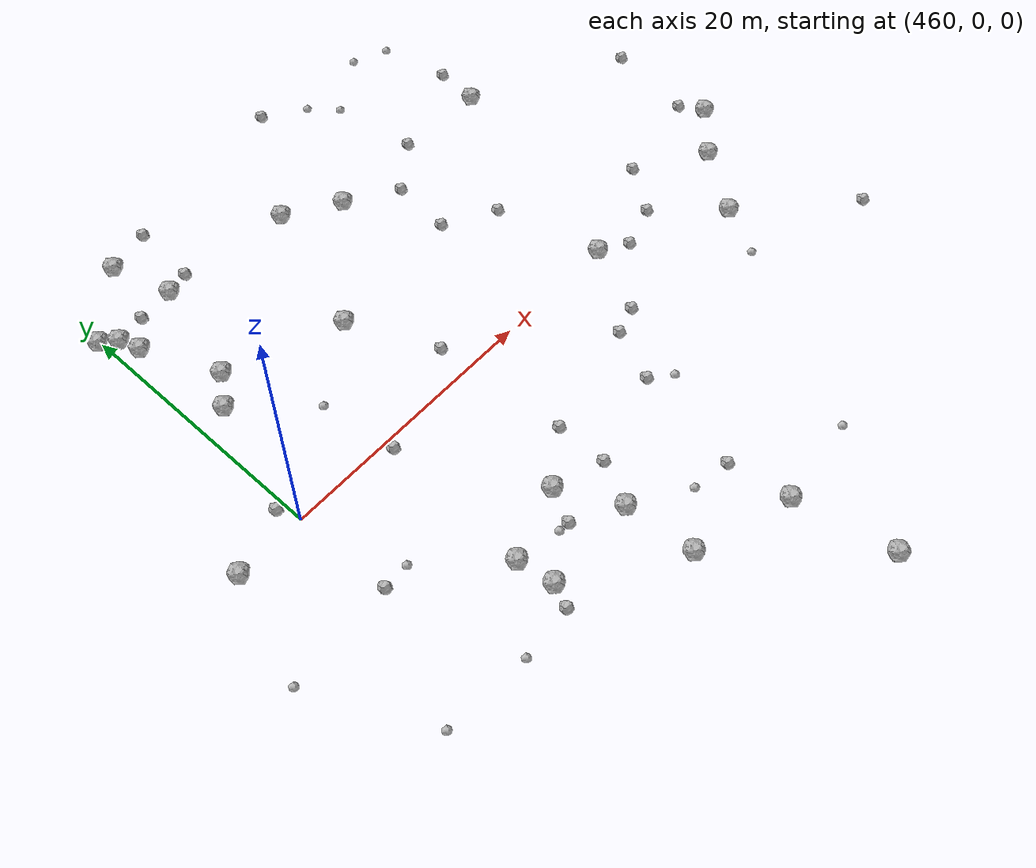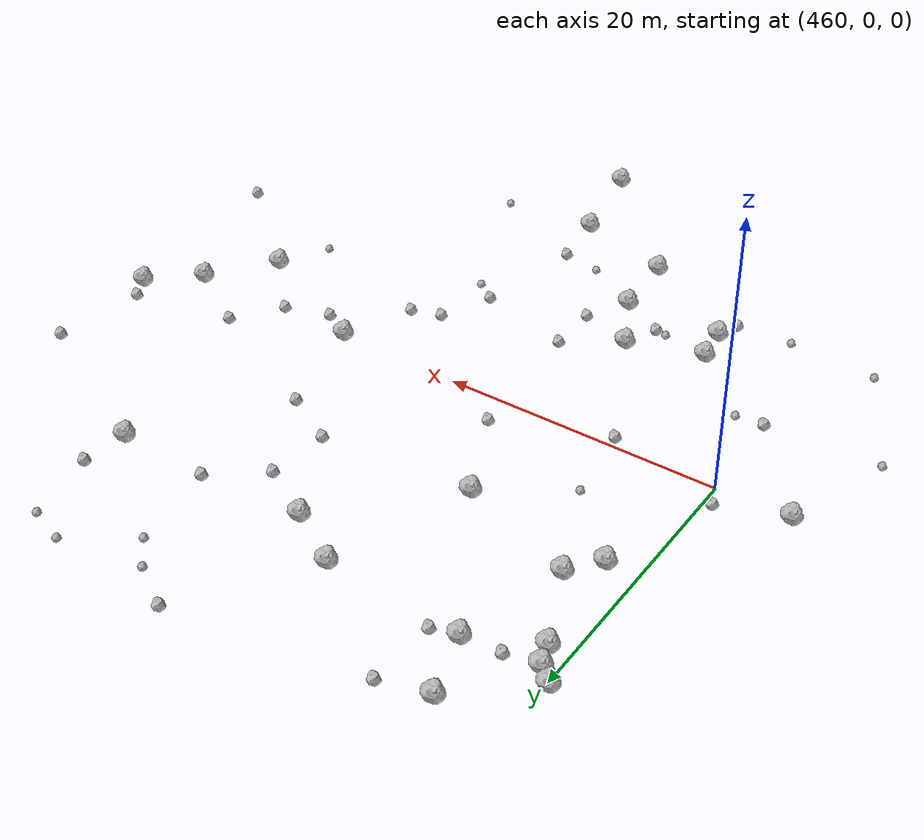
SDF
<sdf version="1.6">
 <world name="default">
  <include><uri>model://sun</uri></include>
  <model name="rock1_12_4">
   <include><uri>model://rock1</uri><pose>476.14719918242906 19.14904064251089 0.5 0 0 0</pose></include>
  </model>
  <model name="rock1_12_5">
   <include><uri>model://rock1</uri><pose>482.38706177207746 -22.113586425801806 0.5 0 0 0</pose></include>
  </model>
  <model name="rock1_12_6">
   <include><uri>model://rock1</uri><pose>464.70957307211063 24.433625763355863 0.5 0 0 0</pose></include>
  </model>
  <model name="rock1_12_7">
   <include><uri>model://rock1</uri><pose>472.568769476934 -10.379534569300827 0.5 0 0 0</pose></include>
  </model>
  <model name="rock1_12_8">
   <include><uri>model://rock1</uri><pose>464.0009322614042 11.996155817879348 0.5 0 0 0</pose></include>
  </model>
  <model name="rock1_12_9">
   <include><uri>model://rock1</uri><pose>467.20472114096214 -12.090651039948291 0.5 0 0 0</pose></include>
  </model>
  <model name="rock1_12_10">
   <include><uri>model://rock1</uri><pose>489.45983597241496 -0.10594855802263226 0.5 0 0 0</pose></include>
  </model>
  <model name="rock1_12_11">
   <include><uri>model://rock1</uri><pose>462.29711200104634 9.82562094169829 0.5 0 0 0</pose></include>
  </model>
  <model name="rock1_12_12">
   <include><uri>model://rock1</uri><pose>466.06911522138284 19.84864370463358 0.5 0 0 0</pose></include>
  </model>
  <model name="rock1_12_13">
   <include><uri>model://rock1</uri><pose>460.9804815922818 19.199954729630683 0.5 0 0 0</pose></include>
  </model>
  <model name="rock1_12_14">
   <include><uri>model://rock1</uri><pose>475.18580317754765 -19.843462301648195 0.5 0 0 0</pose></include>
  </model>
  <model name="rock1_12_15">
   <include><uri>model://rock1</uri><pose>480.1400419684457 16.728920729028104 0.5 0 0 0</pose></include>
  </model>
  <model name="rock1_12_16">
   <include><uri>model://rock1</uri><pose>461.49481003697247 17.623256705619383 0.5 0 0 0</pose></include>
  </model>
  <model name="rock1_12_17">
   <include><uri>model://rock1</uri><pose>498.97323811568543 -4.729303880010725 0.5 0 0 0</pose></include>
  </model>
  <model name="rock1_12_18">
   <include><uri>model://rock1</uri><pose>474.7660267658925 -14.67453935622154 0.5 0 0 0</pose></include>
  </model>
  <model name="rock1_12_19">
   <include><uri>model://rock1</uri><pose>502.3905332911399 -0.2122032972127883 0.5 0 0 0</pose></include>
  </model>
  <model name="rock1_12_20">
   <include><uri>model://rock1</uri><pose>494.395950127814 16.985412298644796 0.5 0 0 0</pose></include>
  </model>
  <model name="rock1_12_21">
   <include><uri>model://rock1</uri><pose>505.7392445326382 2.6995849849614544 0.5 0 0 0</pose></include>
  </model>
  <model name="rock1_12_22">
   <include><uri>model://rock1</uri><pose>454.8149587106914 -0.03549572247707644 0.5 0 0 0</pose></include>
  </model>
  <model name="rock1_12_23">
   <include><uri>model://rock1</uri><pose>483.8067891410254 -29.327904102986466 0.5 0 0 0</pose></include>
  </model>
  <model name="rock1_12_24">
   <include><uri>model://rock1</uri><pose>472.6288907072291 8.909082468340607 0.5 0 0 0</pose></include>
  </model>
  <model name="rock1_12_25">
   <include><uri>model://rock1</uri><pose>459.8838925143579 20.16764700842438 0.5 0 0 0</pose></include>
  </model>
  <model name="rock1_12_26">
   <include><uri>model://rock1</uri><pose>467.59589556767054 -14.821096109686621 0.5 0 0 0</pose></include>
  </model>
  <model name="rock2_12_0">
   <include><uri>model://rock2</uri><pose>463.23357434022944 19.666164830462165 0.3 0 0 0</pose></include>
  </model>
  <model name="rock2_12_1">
   <include><uri>model://rock2</uri><pose>494.81056777102646 -0.3033358841056817 0.3 0 0 0</pose></include>
  </model>
  <model name="rock2_12_2">
   <include><uri>model://rock2</uri><pose>506.4999686873302 -11.47780032567045 0.3 0 0 0</pose></include>
  </model>
  <model name="rock2_12_3">
   <include><uri>model://rock2</uri><pose>505.81314243076145 11.126797900094004 0.3 0 0 0</pose></include>
  </model>
  <model name="rock2_12_4">
   <include><uri>model://rock2</uri><pose>487.5360549916366 17.30034672475586 0.3 0 0 0</pose></include>
  </model>
  <model name="rock2_12_5">
   <include><uri>model://rock2</uri><pose>494.6881900975712 20.412006908160713 0.3 0 0 0</pose></include>
  </model>
  <model name="rock2_12_6">
   <include><uri>model://rock2</uri><pose>460.2871408332345 -7.2866851541415585 0.3 0 0 0</pose></include>
  </model>
  <model name="rock2_12_7">
   <include><uri>model://rock2</uri><pose>491.54240871735675 -1.3261212650022607 0.3 0 0 0</pose></include>
  </model>
  <model name="rock2_12_8">
   <include><uri>model://rock2</uri><pose>475.5567565439799 2.436300988949995 0.3 0 0 0</pose></include>
  </model>
  <model name="rock2_12_9">
   <include><uri>model://rock2</uri><pose>487.3755396931564 7.832443651317362 0.3 0 0 0</pose></include>
  </model>
  <model name="rock2_12_10">
   <include><uri>model://rock2</uri><pose>481.8515847077777 27.67148743962305 0.3 0 0 0</pose></include>
  </model>
  <model name="rock2_12_11">
   <include><uri>model://rock2</uri><pose>497.2385226576885 3.0228412185491678 0.3 0 0 0</pose></include>
  </model>
  <model name="rock2_12_12">
   <include><uri>model://rock2</uri><pose>504.71708352866506 4.472973454099822 0.3 0 0 0</pose></include>
  </model>
  <model name="rock2_12_13">
   <include><uri>model://rock2</uri><pose>487.1163472852391 -5.09520592298945 0.3 0 0 0</pose></include>
  </model>
  <model name="rock2_12_14">
   <include><uri>model://rock2</uri><pose>471.367603982607 -12.73422557589404 0.3 0 0 0</pose></include>
  </model>
  <model name="rock2_12_15">
   <include><uri>model://rock2</uri><pose>481.68256775465505 -17.576795313530674 0.3 0 0 0</pose></include>
  </model>
  <model name="rock2_12_16">
   <include><uri>model://rock2</uri><pose>483.95842325734947 14.529716989588906 0.3 0 0 0</pose></include>
  </model>
  <model name="rock2_12_17">
   <include><uri>model://rock2</uri><pose>467.72483878846236 -0.6894658147195223 0.3 0 0 0</pose></include>
  </model>
  <model name="rock2_12_18">
   <include><uri>model://rock2</uri><pose>483.2823845159847 -9.541778552849298 0.3 0 0 0</pose></include>
  </model>
  <model name="rock2_12_19">
   <include><uri>model://rock2</uri><pose>483.5259272244948 9.97339532148483 0.3 0 0 0</pose></include>
  </model>
  <model name="rock2_12_20">
   <include><uri>model://rock2</uri><pose>459.40736063755526 1.6617308637916821 0.3 0 0 0</pose></include>
  </model>
  <model name="rock2_12_21">
   <include><uri>model://rock2</uri><pose>476.3240106100347 -11.520630351293374 0.3 0 0 0</pose></include>
  </model>
  <model name="rock2_12_22">
   <include><uri>model://rock2</uri><pose>468.0506220330485 25.346575045089935 0.3 0 0 0</pose></include>
  </model>
  <model name="rock2_12_23">
   <include><uri>model://rock2</uri><pose>484.95523723734755 -5.759304317778902 0.3 0 0 0</pose></include>
  </model>
  <model name="rock2_12_24">
   <include><uri>model://rock2</uri><pose>476.3216779363618 -7.688901155219604 0.3 0 0 0</pose></include>
  </model>
  <model name="rock2_12_25">
   <include><uri>model://rock2</uri><pose>467.79666996511406 20.35983030852121 0.3 0 0 0</pose></include>
  </model>
  <model name="rock2_12_26">
   <include><uri>model://rock2</uri><pose>466.86926011452323 -16.419256584898996 0.3 0 0 0</pose></include>
  </model>
  <model name="rock3_12_0">
   <include><uri>model://rock3</uri><pose>478.8101493578332 -17.130391986671054 0.2 0 0 0</pose></include>
  </model>
  <model name="rock3_12_1">
   <include><uri>model://rock3</uri><pose>484.8884308933801 25.659035580256443 0.2 0 0 0</pose></include>
  </model>
  <model name="rock3_12_2">
   <include><uri>model://rock3</uri><pose>456.35164079782976 -16.281176068938567 0.2 0 0 0</pose></include>
  </model>
  <model name="rock3_12_3">
   <include><uri>model://rock3</uri><pose>462.2919909874542 -7.244969427390011 0.2 0 0 0</pose></include>
  </model>
  <model name="rock3_12_4">
   <include><uri>model://rock3</uri><pose>462.78820654632625 -16.761703781948786 0.2 0 0 0</pose></include>
  </model>
  <model name="rock3_12_5">
   <include><uri>model://rock3</uri><pose>470.54343928198466 -12.704364017304425 0.2 0 0 0</pose></include>
  </model>
  <model name="rock3_12_6">
   <include><uri>model://rock3</uri><pose>489.1734368122287 -21.522002344147637 0.2 0 0 0</pose></include>
  </model>
  <model name="rock3_12_7">
   <include><uri>model://rock3</uri><pose>486.5589080942667 23.70101559424087 0.2 0 0 0</pose></include>
  </model>
  <model name="rock3_12_8">
   <include><uri>model://rock3</uri><pose>490.9489819074212 26.682709994150642 0.2 0 0 0</pose></include>
  </model>
  <model name="rock3_12_9">
   <include><uri>model://rock3</uri><pose>466.86903631876896 5.023444563857339 0.2 0 0 0</pose></include>
  </model>
  <model name="rock3_12_10">
   <include><uri>model://rock3</uri><pose>493.63186625063196 25.653123496263724 0.2 0 0 0</pose></include>
  </model>
  <model name="rock3_12_11">
   <include><uri>model://rock3</uri><pose>496.9427567892638 -8.338379996734744 0.2 0 0 0</pose></include>
  </model>
  <model name="rock3_12_12">
   <include><uri>model://rock3</uri><pose>484.83043381498686 -10.799239322621212 0.2 0 0 0</pose></include>
  </model>
  <model name="rock3_12_13">
   <include><uri>model://rock3</uri><pose>452.11953369414016 -7.807355594538489 0.2 0 0 0</pose></include>
  </model>
 </world>
</sdf>
